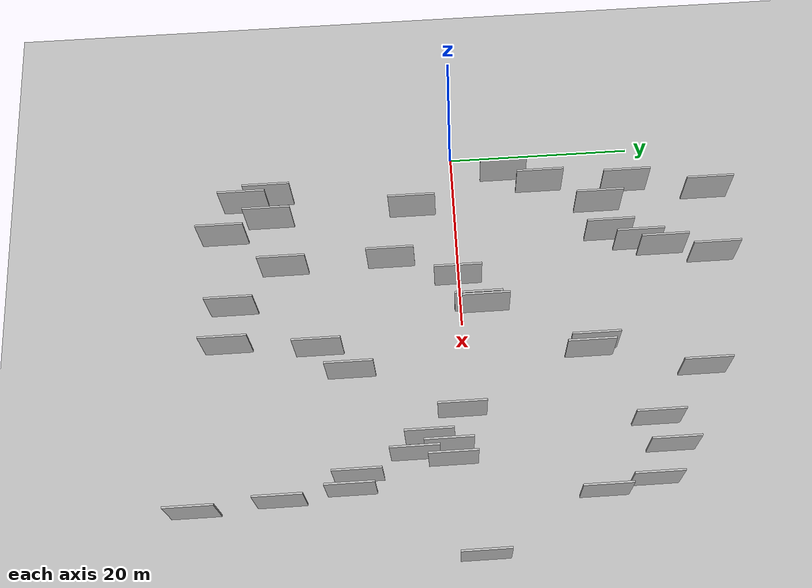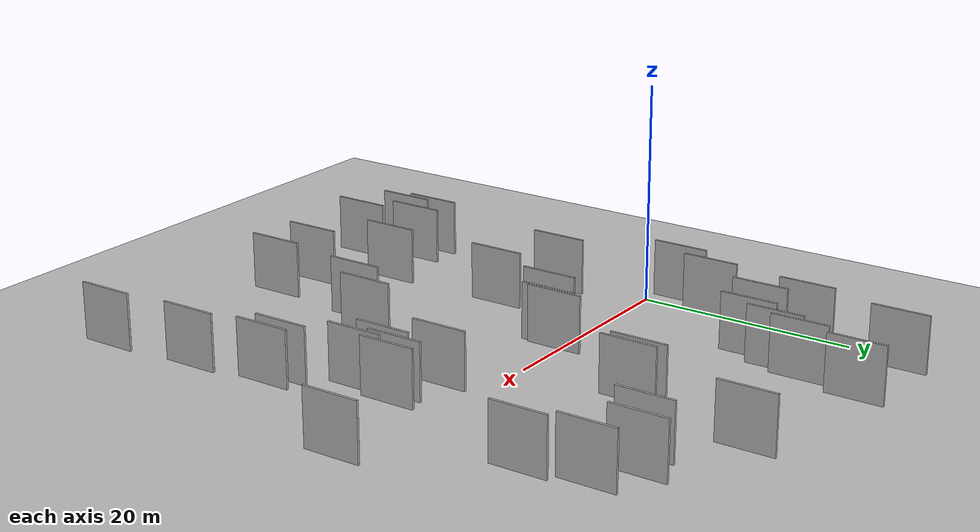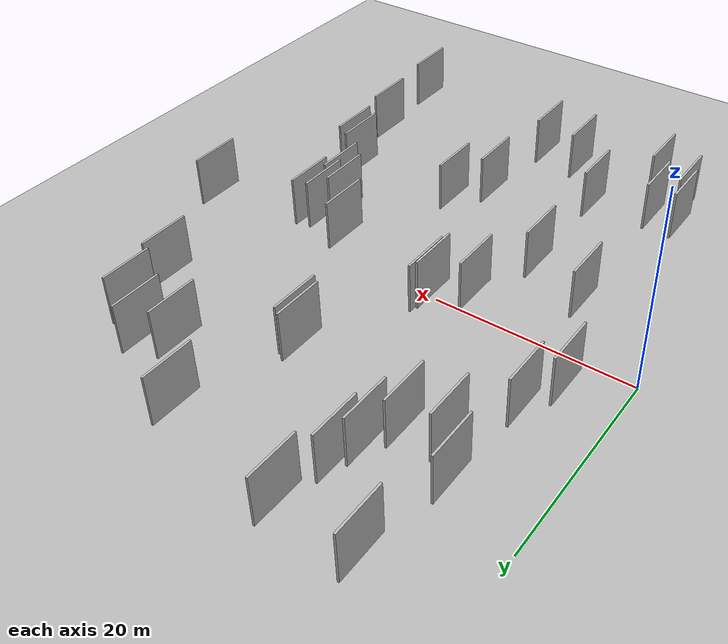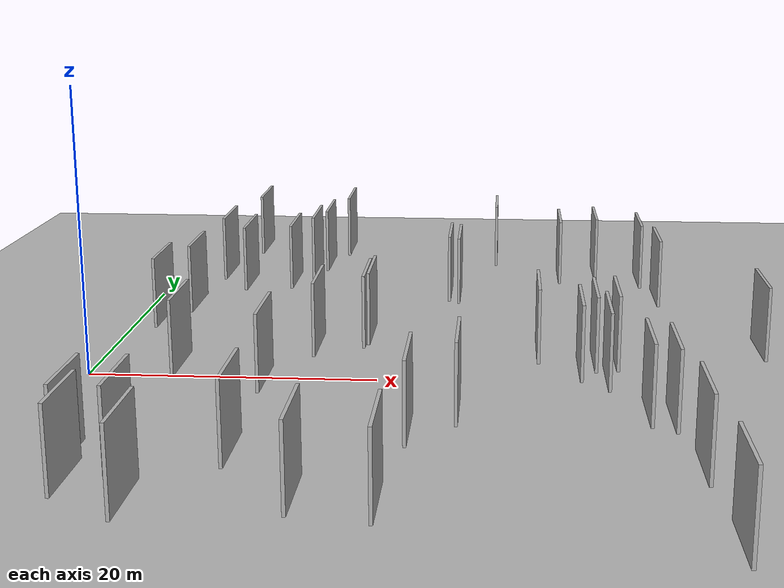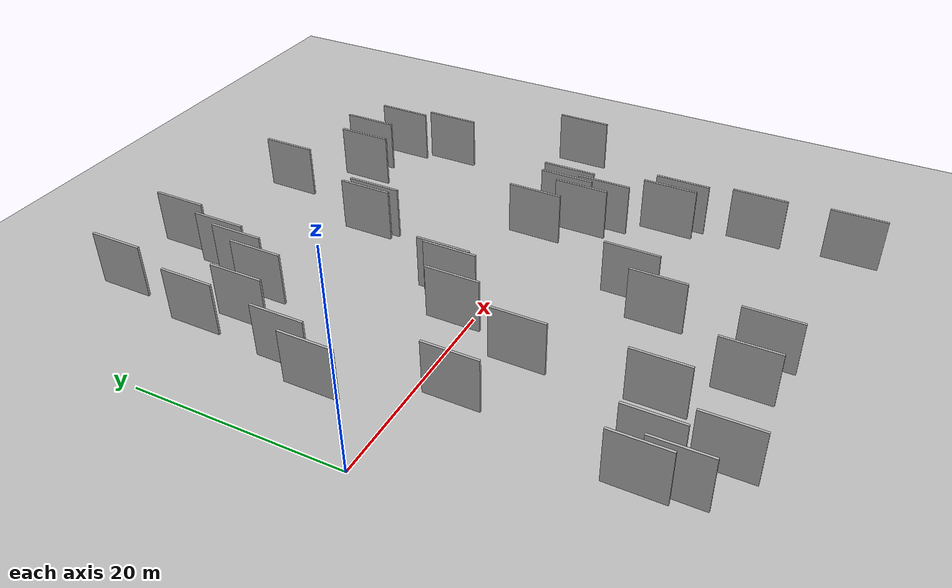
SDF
<?xml version="1.0" encoding="utf-8"?>

<sdf version="1.6">

   <world name="default">

      <gui fullscreen="0">

         <camera name="user_camera">

            <pose>-15 0 4.57585 0 0 0</pose>

            <view_controller>orbit</view_controller>

         </camera>

      </gui>

      <scene>

         <sky>

           <clouds>

             <speed>12</speed>

           </clouds>

         </sky>

         <ambient>0.4 0.4 0.4 1</ambient>

         <background>0.7 0.7 0.7 1</background>

         <shadows>1</shadows>

      </scene>

      <gravity>0 0 -9.8066</gravity>

      <magnetic_field>6e-06 2.3e-05 -4.2e-05</magnetic_field>

      <physics default="0" name="default_physics" type="ode">

         <ode>

            <solver>

               <type>quick</type>

               <iters>10</iters>

               <sor>1.0</sor>

               <use_dynamic_moi_rescaling>0</use_dynamic_moi_rescaling>

            </solver>

            <constraints>

               <cfm>0</cfm>

               <erp>0.2</erp>

               <contact_max_correcting_vel>100</contact_max_correcting_vel>

               <contact_surface_layer>0.001</contact_surface_layer>

            </constraints>

         </ode>

         <max_step_size>0.004</max_step_size>

         <real_time_factor>1</real_time_factor>

         <real_time_update_rate>250</real_time_update_rate>

      </physics>

      <light name="sun" type="directional">

         <cast_shadows>1</cast_shadows>

         <pose>0 0 10 0 0 0</pose>

         <diffuse>0.8 0.8 0.8 1</diffuse>

         <specular>0.2 0.2 0.2 1</specular>

         <attenuation>

            <range>1000</range>

            <constant>0.9</constant>

            <linear>0.01</linear>

            <quadratic>0.001</quadratic>

         </attenuation>

         <direction>-0.5 0.1 -0.9</direction>

      </light>

      <include>

         <name>ground_plane_1</name>

         <uri>model://HANNAS_ground_plane</uri>

         <pose>0 0 0  0 0 0</pose>

      </include>

      <include>

         <name>ground_plane_2</name>

         <uri>model://HANNAS_ground_plane</uri>

         <pose>100 0 0  0 0 0</pose>

      </include>

      <model name="HANNAS_wall_1">

         <static>1</static>

         <pose frame="">8.2006 -19.9528 2.5 0.000000 0.000000 1.570796</pose>

         <link name="link">

            <pose frame="">0 0 2.50 0 0 0</pose>

            <collision name="collision">

               <geometry>

                  <box>

                     <size>5.00 0.2 5.00</size>

                  </box>

               </geometry>

               <max_contacts>10</max_contacts>

               <surface>

                  <contact>

                     <ode/>

                  </contact>

                  <bounce/>

                  <friction>

                     <torsional>

                        <ode/>

                     </torsional>

                     <ode/>

                  </friction>

               </surface>

            </collision>

            <visual name="visual">

               <cast_shadows>0</cast_shadows>

               <geometry>

                  <box>

                     <size>5.00 0.2 5.00</size>

                  </box>

               </geometry>

               <material>

                  <script>

                     <uri>model://HANNAS_wall/materials/scripts</uri>

                     <uri>model://HANNAS_wall/materials/textures</uri>

                     <name>vrc/HANNAS_wall</name>

                  </script>

               </material>

            </visual>

            <self_collide>0</self_collide>

            <enable_wind>0</enable_wind>

            <kinematic>0</kinematic>

         </link>

      </model>

      <model name="HANNAS_wall_2">

         <static>1</static>

         <pose frame="">34.5145 -2.1773 2.5 0.000000 0.000000 1.570796</pose>

         <link name="link">

            <pose frame="">0 0 2.50 0 0 0</pose>

            <collision name="collision">

               <geometry>

                  <box>

                     <size>5.00 0.2 5.00</size>

                  </box>

               </geometry>

               <max_contacts>10</max_contacts>

               <surface>

                  <contact>

                     <ode/>

                  </contact>

                  <bounce/>

                  <friction>

                     <torsional>

                        <ode/>

                     </torsional>

                     <ode/>

                  </friction>

               </surface>

            </collision>

            <visual name="visual">

               <cast_shadows>0</cast_shadows>

               <geometry>

                  <box>

                     <size>5.00 0.2 5.00</size>

                  </box>

               </geometry>

               <material>

                  <script>

                     <uri>model://HANNAS_wall/materials/scripts</uri>

                     <uri>model://HANNAS_wall/materials/textures</uri>

                     <name>vrc/HANNAS_wall</name>

                  </script>

               </material>

            </visual>

            <self_collide>0</self_collide>

            <enable_wind>0</enable_wind>

            <kinematic>0</kinematic>

         </link>

      </model>

      <model name="HANNAS_wall_3">

         <static>1</static>

         <pose frame="">25.9468 -11.8065 2.5 0.000000 0.000000 1.570796</pose>

         <link name="link">

            <pose frame="">0 0 2.50 0 0 0</pose>

            <collision name="collision">

               <geometry>

                  <box>

                     <size>5.00 0.2 5.00</size>

                  </box>

               </geometry>

               <max_contacts>10</max_contacts>

               <surface>

                  <contact>

                     <ode/>

                  </contact>

                  <bounce/>

                  <friction>

                     <torsional>

                        <ode/>

                     </torsional>

                     <ode/>

                  </friction>

               </surface>

            </collision>

            <visual name="visual">

               <cast_shadows>0</cast_shadows>

               <geometry>

                  <box>

                     <size>5.00 0.2 5.00</size>

                  </box>

               </geometry>

               <material>

                  <script>

                     <uri>model://HANNAS_wall/materials/scripts</uri>

                     <uri>model://HANNAS_wall/materials/textures</uri>

                     <name>vrc/HANNAS_wall</name>

                  </script>

               </material>

            </visual>

            <self_collide>0</self_collide>

            <enable_wind>0</enable_wind>

            <kinematic>0</kinematic>

         </link>

      </model>

      <model name="HANNAS_wall_4">

         <static>1</static>

         <pose frame="">39.1354 -19.1240 2.5 0.000000 0.000000 1.570796</pose>

         <link name="link">

            <pose frame="">0 0 2.50 0 0 0</pose>

            <collision name="collision">

               <geometry>

                  <box>

                     <size>5.00 0.2 5.00</size>

                  </box>

               </geometry>

               <max_contacts>10</max_contacts>

               <surface>

                  <contact>

                     <ode/>

                  </contact>

                  <bounce/>

                  <friction>

                     <torsional>

                        <ode/>

                     </torsional>

                     <ode/>

                  </friction>

               </surface>

            </collision>

            <visual name="visual">

               <cast_shadows>0</cast_shadows>

               <geometry>

                  <box>

                     <size>5.00 0.2 5.00</size>

                  </box>

               </geometry>

               <material>

                  <script>

                     <uri>model://HANNAS_wall/materials/scripts</uri>

                     <uri>model://HANNAS_wall/materials/textures</uri>

                     <name>vrc/HANNAS_wall</name>

                  </script>

               </material>

            </visual>

            <self_collide>0</self_collide>

            <enable_wind>0</enable_wind>

            <kinematic>0</kinematic>

         </link>

      </model>

      <model name="HANNAS_wall_5">

         <static>1</static>

         <pose frame="">3.9859 5.5647 2.5 0.000000 0.000000 1.570796</pose>

         <link name="link">

            <pose frame="">0 0 2.50 0 0 0</pose>

            <collision name="collision">

               <geometry>

                  <box>

                     <size>5.00 0.2 5.00</size>

                  </box>

               </geometry>

               <max_contacts>10</max_contacts>

               <surface>

                  <contact>

                     <ode/>

                  </contact>

                  <bounce/>

                  <friction>

                     <torsional>

                        <ode/>

                     </torsional>

                     <ode/>

                  </friction>

               </surface>

            </collision>

            <visual name="visual">

               <cast_shadows>0</cast_shadows>

               <geometry>

                  <box>

                     <size>5.00 0.2 5.00</size>

                  </box>

               </geometry>

               <material>

                  <script>

                     <uri>model://HANNAS_wall/materials/scripts</uri>

                     <uri>model://HANNAS_wall/materials/textures</uri>

                     <name>vrc/HANNAS_wall</name>

                  </script>

               </material>

            </visual>

            <self_collide>0</self_collide>

            <enable_wind>0</enable_wind>

            <kinematic>0</kinematic>

         </link>

      </model>

      <model name="HANNAS_wall_6">

         <static>1</static>

         <pose frame="">30.8836 -0.6187 2.5 0.000000 0.000000 1.570796</pose>

         <link name="link">

            <pose frame="">0 0 2.50 0 0 0</pose>

            <collision name="collision">

               <geometry>

                  <box>

                     <size>5.00 0.2 5.00</size>

                  </box>

               </geometry>

               <max_contacts>10</max_contacts>

               <surface>

                  <contact>

                     <ode/>

                  </contact>

                  <bounce/>

                  <friction>

                     <torsional>

                        <ode/>

                     </torsional>

                     <ode/>

                  </friction>

               </surface>

            </collision>

            <visual name="visual">

               <cast_shadows>0</cast_shadows>

               <geometry>

                  <box>

                     <size>5.00 0.2 5.00</size>

                  </box>

               </geometry>

               <material>

                  <script>

                     <uri>model://HANNAS_wall/materials/scripts</uri>

                     <uri>model://HANNAS_wall/materials/textures</uri>

                     <name>vrc/HANNAS_wall</name>

                  </script>

               </material>

            </visual>

            <self_collide>0</self_collide>

            <enable_wind>0</enable_wind>

            <kinematic>0</kinematic>

         </link>

      </model>

      <model name="HANNAS_wall_7">

         <static>1</static>

         <pose frame="">45.7102 0.7342 2.5 0.000000 0.000000 1.570796</pose>

         <link name="link">

            <pose frame="">0 0 2.50 0 0 0</pose>

            <collision name="collision">

               <geometry>

                  <box>

                     <size>5.00 0.2 5.00</size>

                  </box>

               </geometry>

               <max_contacts>10</max_contacts>

               <surface>

                  <contact>

                     <ode/>

                  </contact>

                  <bounce/>

                  <friction>

                     <torsional>

                        <ode/>

                     </torsional>

                     <ode/>

                  </friction>

               </surface>

            </collision>

            <visual name="visual">

               <cast_shadows>0</cast_shadows>

               <geometry>

                  <box>

                     <size>5.00 0.2 5.00</size>

                  </box>

               </geometry>

               <material>

                  <script>

                     <uri>model://HANNAS_wall/materials/scripts</uri>

                     <uri>model://HANNAS_wall/materials/textures</uri>

                     <name>vrc/HANNAS_wall</name>

                  </script>

               </material>

            </visual>

            <self_collide>0</self_collide>

            <enable_wind>0</enable_wind>

            <kinematic>0</kinematic>

         </link>

      </model>

      <model name="HANNAS_wall_8">

         <static>1</static>

         <pose frame="">19.4654 2.5809 2.5 0.000000 0.000000 1.570796</pose>

         <link name="link">

            <pose frame="">0 0 2.50 0 0 0</pose>

            <collision name="collision">

               <geometry>

                  <box>

                     <size>5.00 0.2 5.00</size>

                  </box>

               </geometry>

               <max_contacts>10</max_contacts>

               <surface>

                  <contact>

                     <ode/>

                  </contact>

                  <bounce/>

                  <friction>

                     <torsional>

                        <ode/>

                     </torsional>

                     <ode/>

                  </friction>

               </surface>

            </collision>

            <visual name="visual">

               <cast_shadows>0</cast_shadows>

               <geometry>

                  <box>

                     <size>5.00 0.2 5.00</size>

                  </box>

               </geometry>

               <material>

                  <script>

                     <uri>model://HANNAS_wall/materials/scripts</uri>

                     <uri>model://HANNAS_wall/materials/textures</uri>

                     <name>vrc/HANNAS_wall</name>

                  </script>

               </material>

            </visual>

            <self_collide>0</self_collide>

            <enable_wind>0</enable_wind>

            <kinematic>0</kinematic>

         </link>

      </model>

      <model name="HANNAS_wall_9">

         <static>1</static>

         <pose frame="">6.1823 18.6429 2.5 0.000000 0.000000 1.570796</pose>

         <link name="link">

            <pose frame="">0 0 2.50 0 0 0</pose>

            <collision name="collision">

               <geometry>

                  <box>

                     <size>5.00 0.2 5.00</size>

                  </box>

               </geometry>

               <max_contacts>10</max_contacts>

               <surface>

                  <contact>

                     <ode/>

                  </contact>

                  <bounce/>

                  <friction>

                     <torsional>

                        <ode/>

                     </torsional>

                     <ode/>

                  </friction>

               </surface>

            </collision>

            <visual name="visual">

               <cast_shadows>0</cast_shadows>

               <geometry>

                  <box>

                     <size>5.00 0.2 5.00</size>

                  </box>

               </geometry>

               <material>

                  <script>

                     <uri>model://HANNAS_wall/materials/scripts</uri>

                     <uri>model://HANNAS_wall/materials/textures</uri>

                     <name>vrc/HANNAS_wall</name>

                  </script>

               </material>

            </visual>

            <self_collide>0</self_collide>

            <enable_wind>0</enable_wind>

            <kinematic>0</kinematic>

         </link>

      </model>

      <model name="HANNAS_wall_10">

         <static>1</static>

         <pose frame="">13.9180 -18.4678 2.5 0.000000 0.000000 1.570796</pose>

         <link name="link">

            <pose frame="">0 0 2.50 0 0 0</pose>

            <collision name="collision">

               <geometry>

                  <box>

                     <size>5.00 0.2 5.00</size>

                  </box>

               </geometry>

               <max_contacts>10</max_contacts>

               <surface>

                  <contact>

                     <ode/>

                  </contact>

                  <bounce/>

                  <friction>

                     <torsional>

                        <ode/>

                     </torsional>

                     <ode/>

                  </friction>

               </surface>

            </collision>

            <visual name="visual">

               <cast_shadows>0</cast_shadows>

               <geometry>

                  <box>

                     <size>5.00 0.2 5.00</size>

                  </box>

               </geometry>

               <material>

                  <script>

                     <uri>model://HANNAS_wall/materials/scripts</uri>

                     <uri>model://HANNAS_wall/materials/textures</uri>

                     <name>vrc/HANNAS_wall</name>

                  </script>

               </material>

            </visual>

            <self_collide>0</self_collide>

            <enable_wind>0</enable_wind>

            <kinematic>0</kinematic>

         </link>

      </model>

      <model name="HANNAS_wall_11">

         <static>1</static>

         <pose frame="">23.2709 -15.0259 2.5 0.000000 0.000000 1.570796</pose>

         <link name="link">

            <pose frame="">0 0 2.50 0 0 0</pose>

            <collision name="collision">

               <geometry>

                  <box>

                     <size>5.00 0.2 5.00</size>

                  </box>

               </geometry>

               <max_contacts>10</max_contacts>

               <surface>

                  <contact>

                     <ode/>

                  </contact>

                  <bounce/>

                  <friction>

                     <torsional>

                        <ode/>

                     </torsional>

                     <ode/>

                  </friction>

               </surface>

            </collision>

            <visual name="visual">

               <cast_shadows>0</cast_shadows>

               <geometry>

                  <box>

                     <size>5.00 0.2 5.00</size>

                  </box>

               </geometry>

               <material>

                  <script>

                     <uri>model://HANNAS_wall/materials/scripts</uri>

                     <uri>model://HANNAS_wall/materials/textures</uri>

                     <name>vrc/HANNAS_wall</name>

                  </script>

               </material>

            </visual>

            <self_collide>0</self_collide>

            <enable_wind>0</enable_wind>

            <kinematic>0</kinematic>

         </link>

      </model>

      <model name="HANNAS_wall_12">

         <static>1</static>

         <pose frame="">16.1060 -0.1244 2.5 0.000000 0.000000 1.570796</pose>

         <link name="link">

            <pose frame="">0 0 2.50 0 0 0</pose>

            <collision name="collision">

               <geometry>

                  <box>

                     <size>5.00 0.2 5.00</size>

                  </box>

               </geometry>

               <max_contacts>10</max_contacts>

               <surface>

                  <contact>

                     <ode/>

                  </contact>

                  <bounce/>

                  <friction>

                     <torsional>

                        <ode/>

                     </torsional>

                     <ode/>

                  </friction>

               </surface>

            </collision>

            <visual name="visual">

               <cast_shadows>0</cast_shadows>

               <geometry>

                  <box>

                     <size>5.00 0.2 5.00</size>

                  </box>

               </geometry>

               <material>

                  <script>

                     <uri>model://HANNAS_wall/materials/scripts</uri>

                     <uri>model://HANNAS_wall/materials/textures</uri>

                     <name>vrc/HANNAS_wall</name>

                  </script>

               </material>

            </visual>

            <self_collide>0</self_collide>

            <enable_wind>0</enable_wind>

            <kinematic>0</kinematic>

         </link>

      </model>

      <model name="HANNAS_wall_13">

         <static>1</static>

         <pose frame="">39.2687 18.1331 2.5 0.000000 0.000000 1.570796</pose>

         <link name="link">

            <pose frame="">0 0 2.50 0 0 0</pose>

            <collision name="collision">

               <geometry>

                  <box>

                     <size>5.00 0.2 5.00</size>

                  </box>

               </geometry>

               <max_contacts>10</max_contacts>

               <surface>

                  <contact>

                     <ode/>

                  </contact>

                  <bounce/>

                  <friction>

                     <torsional>

                        <ode/>

                     </torsional>

                     <ode/>

                  </friction>

               </surface>

            </collision>

            <visual name="visual">

               <cast_shadows>0</cast_shadows>

               <geometry>

                  <box>

                     <size>5.00 0.2 5.00</size>

                  </box>

               </geometry>

               <material>

                  <script>

                     <uri>model://HANNAS_wall/materials/scripts</uri>

                     <uri>model://HANNAS_wall/materials/textures</uri>

                     <name>vrc/HANNAS_wall</name>

                  </script>

               </material>

            </visual>

            <self_collide>0</self_collide>

            <enable_wind>0</enable_wind>

            <kinematic>0</kinematic>

         </link>

      </model>

      <model name="HANNAS_wall_14">

         <static>1</static>

         <pose frame="">5.4547 -19.9557 2.5 0.000000 0.000000 1.570796</pose>

         <link name="link">

            <pose frame="">0 0 2.50 0 0 0</pose>

            <collision name="collision">

               <geometry>

                  <box>

                     <size>5.00 0.2 5.00</size>

                  </box>

               </geometry>

               <max_contacts>10</max_contacts>

               <surface>

                  <contact>

                     <ode/>

                  </contact>

                  <bounce/>

                  <friction>

                     <torsional>

                        <ode/>

                     </torsional>

                     <ode/>

                  </friction>

               </surface>

            </collision>

            <visual name="visual">

               <cast_shadows>0</cast_shadows>

               <geometry>

                  <box>

                     <size>5.00 0.2 5.00</size>

                  </box>

               </geometry>

               <material>

                  <script>

                     <uri>model://HANNAS_wall/materials/scripts</uri>

                     <uri>model://HANNAS_wall/materials/textures</uri>

                     <name>vrc/HANNAS_wall</name>

                  </script>

               </material>

            </visual>

            <self_collide>0</self_collide>

            <enable_wind>0</enable_wind>

            <kinematic>0</kinematic>

         </link>

      </model>

      <model name="HANNAS_wall_15">

         <static>1</static>

         <pose frame="">14.0454 21.8144 2.5 0.000000 0.000000 1.570796</pose>

         <link name="link">

            <pose frame="">0 0 2.50 0 0 0</pose>

            <collision name="collision">

               <geometry>

                  <box>

                     <size>5.00 0.2 5.00</size>

                  </box>

               </geometry>

               <max_contacts>10</max_contacts>

               <surface>

                  <contact>

                     <ode/>

                  </contact>

                  <bounce/>

                  <friction>

                     <torsional>

                        <ode/>

                     </torsional>

                     <ode/>

                  </friction>

               </surface>

            </collision>

            <visual name="visual">

               <cast_shadows>0</cast_shadows>

               <geometry>

                  <box>

                     <size>5.00 0.2 5.00</size>

                  </box>

               </geometry>

               <material>

                  <script>

                     <uri>model://HANNAS_wall/materials/scripts</uri>

                     <uri>model://HANNAS_wall/materials/textures</uri>

                     <name>vrc/HANNAS_wall</name>

                  </script>

               </material>

            </visual>

            <self_collide>0</self_collide>

            <enable_wind>0</enable_wind>

            <kinematic>0</kinematic>

         </link>

      </model>

      <model name="HANNAS_wall_16">

         <static>1</static>

         <pose frame="">13.6824 -7.1230 2.5 0.000000 0.000000 1.570796</pose>

         <link name="link">

            <pose frame="">0 0 2.50 0 0 0</pose>

            <collision name="collision">

               <geometry>

                  <box>

                     <size>5.00 0.2 5.00</size>

                  </box>

               </geometry>

               <max_contacts>10</max_contacts>

               <surface>

                  <contact>

                     <ode/>

                  </contact>

                  <bounce/>

                  <friction>

                     <torsional>

                        <ode/>

                     </torsional>

                     <ode/>

                  </friction>

               </surface>

            </collision>

            <visual name="visual">

               <cast_shadows>0</cast_shadows>

               <geometry>

                  <box>

                     <size>5.00 0.2 5.00</size>

                  </box>

               </geometry>

               <material>

                  <script>

                     <uri>model://HANNAS_wall/materials/scripts</uri>

                     <uri>model://HANNAS_wall/materials/textures</uri>

                     <name>vrc/HANNAS_wall</name>

                  </script>

               </material>

            </visual>

            <self_collide>0</self_collide>

            <enable_wind>0</enable_wind>

            <kinematic>0</kinematic>

         </link>

      </model>

      <model name="HANNAS_wall_17">

         <static>1</static>

         <pose frame="">8.4701 15.5159 2.5 0.000000 0.000000 1.570796</pose>

         <link name="link">

            <pose frame="">0 0 2.50 0 0 0</pose>

            <collision name="collision">

               <geometry>

                  <box>

                     <size>5.00 0.2 5.00</size>

                  </box>

               </geometry>

               <max_contacts>10</max_contacts>

               <surface>

                  <contact>

                     <ode/>

                  </contact>

                  <bounce/>

                  <friction>

                     <torsional>

                        <ode/>

                     </torsional>

                     <ode/>

                  </friction>

               </surface>

            </collision>

            <visual name="visual">

               <cast_shadows>0</cast_shadows>

               <geometry>

                  <box>

                     <size>5.00 0.2 5.00</size>

                  </box>

               </geometry>

               <material>

                  <script>

                     <uri>model://HANNAS_wall/materials/scripts</uri>

                     <uri>model://HANNAS_wall/materials/textures</uri>

                     <name>vrc/HANNAS_wall</name>

                  </script>

               </material>

            </visual>

            <self_collide>0</self_collide>

            <enable_wind>0</enable_wind>

            <kinematic>0</kinematic>

         </link>

      </model>

      <model name="HANNAS_wall_18">

         <static>1</static>

         <pose frame="">11.9503 16.2936 2.5 0.000000 0.000000 1.570796</pose>

         <link name="link">

            <pose frame="">0 0 2.50 0 0 0</pose>

            <collision name="collision">

               <geometry>

                  <box>

                     <size>5.00 0.2 5.00</size>

                  </box>

               </geometry>

               <max_contacts>10</max_contacts>

               <surface>

                  <contact>

                     <ode/>

                  </contact>

                  <bounce/>

                  <friction>

                     <torsional>

                        <ode/>

                     </torsional>

                     <ode/>

                  </friction>

               </surface>

            </collision>

            <visual name="visual">

               <cast_shadows>0</cast_shadows>

               <geometry>

                  <box>

                     <size>5.00 0.2 5.00</size>

                  </box>

               </geometry>

               <material>

                  <script>

                     <uri>model://HANNAS_wall/materials/scripts</uri>

                     <uri>model://HANNAS_wall/materials/textures</uri>

                     <name>vrc/HANNAS_wall</name>

                  </script>

               </material>

            </visual>

            <self_collide>0</self_collide>

            <enable_wind>0</enable_wind>

            <kinematic>0</kinematic>

         </link>

      </model>

      <model name="HANNAS_wall_19">

         <static>1</static>

         <pose frame="">39.6693 -27.7155 2.5 0.000000 0.000000 1.570796</pose>

         <link name="link">

            <pose frame="">0 0 2.50 0 0 0</pose>

            <collision name="collision">

               <geometry>

                  <box>

                     <size>5.00 0.2 5.00</size>

                  </box>

               </geometry>

               <max_contacts>10</max_contacts>

               <surface>

                  <contact>

                     <ode/>

                  </contact>

                  <bounce/>

                  <friction>

                     <torsional>

                        <ode/>

                     </torsional>

                     <ode/>

                  </friction>

               </surface>

            </collision>

            <visual name="visual">

               <cast_shadows>0</cast_shadows>

               <geometry>

                  <box>

                     <size>5.00 0.2 5.00</size>

                  </box>

               </geometry>

               <material>

                  <script>

                     <uri>model://HANNAS_wall/materials/scripts</uri>

                     <uri>model://HANNAS_wall/materials/textures</uri>

                     <name>vrc/HANNAS_wall</name>

                  </script>

               </material>

            </visual>

            <self_collide>0</self_collide>

            <enable_wind>0</enable_wind>

            <kinematic>0</kinematic>

         </link>

      </model>

      <model name="HANNAS_wall_20">

         <static>1</static>

         <pose frame="">38.4005 -12.1236 2.5 0.000000 0.000000 1.570796</pose>

         <link name="link">

            <pose frame="">0 0 2.50 0 0 0</pose>

            <collision name="collision">

               <geometry>

                  <box>

                     <size>5.00 0.2 5.00</size>

                  </box>

               </geometry>

               <max_contacts>10</max_contacts>

               <surface>

                  <contact>

                     <ode/>

                  </contact>

                  <bounce/>

                  <friction>

                     <torsional>

                        <ode/>

                     </torsional>

                     <ode/>

                  </friction>

               </surface>

            </collision>

            <visual name="visual">

               <cast_shadows>0</cast_shadows>

               <geometry>

                  <box>

                     <size>5.00 0.2 5.00</size>

                  </box>

               </geometry>

               <material>

                  <script>

                     <uri>model://HANNAS_wall/materials/scripts</uri>

                     <uri>model://HANNAS_wall/materials/textures</uri>

                     <name>vrc/HANNAS_wall</name>

                  </script>

               </material>

            </visual>

            <self_collide>0</self_collide>

            <enable_wind>0</enable_wind>

            <kinematic>0</kinematic>

         </link>

      </model>

      <model name="HANNAS_wall_21">

         <static>1</static>

         <pose frame="">7.7289 -4.5549 2.5 0.000000 0.000000 1.570796</pose>

         <link name="link">

            <pose frame="">0 0 2.50 0 0 0</pose>

            <collision name="collision">

               <geometry>

                  <box>

                     <size>5.00 0.2 5.00</size>

                  </box>

               </geometry>

               <max_contacts>10</max_contacts>

               <surface>

                  <contact>

                     <ode/>

                  </contact>

                  <bounce/>

                  <friction>

                     <torsional>

                        <ode/>

                     </torsional>

                     <ode/>

                  </friction>

               </surface>

            </collision>

            <visual name="visual">

               <cast_shadows>0</cast_shadows>

               <geometry>

                  <box>

                     <size>5.00 0.2 5.00</size>

                  </box>

               </geometry>

               <material>

                  <script>

                     <uri>model://HANNAS_wall/materials/scripts</uri>

                     <uri>model://HANNAS_wall/materials/textures</uri>

                     <name>vrc/HANNAS_wall</name>

                  </script>

               </material>

            </visual>

            <self_collide>0</self_collide>

            <enable_wind>0</enable_wind>

            <kinematic>0</kinematic>

         </link>

      </model>

      <model name="HANNAS_wall_22">

         <static>1</static>

         <pose frame="">9.8994 -24.8902 2.5 0.000000 0.000000 1.570796</pose>

         <link name="link">

            <pose frame="">0 0 2.50 0 0 0</pose>

            <collision name="collision">

               <geometry>

                  <box>

                     <size>5.00 0.2 5.00</size>

                  </box>

               </geometry>

               <max_contacts>10</max_contacts>

               <surface>

                  <contact>

                     <ode/>

                  </contact>

                  <bounce/>

                  <friction>

                     <torsional>

                        <ode/>

                     </torsional>

                     <ode/>

                  </friction>

               </surface>

            </collision>

            <visual name="visual">

               <cast_shadows>0</cast_shadows>

               <geometry>

                  <box>

                     <size>5.00 0.2 5.00</size>

                  </box>

               </geometry>

               <material>

                  <script>

                     <uri>model://HANNAS_wall/materials/scripts</uri>

                     <uri>model://HANNAS_wall/materials/textures</uri>

                     <name>vrc/HANNAS_wall</name>

                  </script>

               </material>

            </visual>

            <self_collide>0</self_collide>

            <enable_wind>0</enable_wind>

            <kinematic>0</kinematic>

         </link>

      </model>

      <model name="HANNAS_wall_23">

         <static>1</static>

         <pose frame="">35.9133 20.2074 2.5 0.000000 0.000000 1.570796</pose>

         <link name="link">

            <pose frame="">0 0 2.50 0 0 0</pose>

            <collision name="collision">

               <geometry>

                  <box>

                     <size>5.00 0.2 5.00</size>

                  </box>

               </geometry>

               <max_contacts>10</max_contacts>

               <surface>

                  <contact>

                     <ode/>

                  </contact>

                  <bounce/>

                  <friction>

                     <torsional>

                        <ode/>

                     </torsional>

                     <ode/>

                  </friction>

               </surface>

            </collision>

            <visual name="visual">

               <cast_shadows>0</cast_shadows>

               <geometry>

                  <box>

                     <size>5.00 0.2 5.00</size>

                  </box>

               </geometry>

               <material>

                  <script>

                     <uri>model://HANNAS_wall/materials/scripts</uri>

                     <uri>model://HANNAS_wall/materials/textures</uri>

                     <name>vrc/HANNAS_wall</name>

                  </script>

               </material>

            </visual>

            <self_collide>0</self_collide>

            <enable_wind>0</enable_wind>

            <kinematic>0</kinematic>

         </link>

      </model>

      <model name="HANNAS_wall_24">

         <static>1</static>

         <pose frame="">37.0571 -11.3581 2.5 0.000000 0.000000 1.570796</pose>

         <link name="link">

            <pose frame="">0 0 2.50 0 0 0</pose>

            <collision name="collision">

               <geometry>

                  <box>

                     <size>5.00 0.2 5.00</size>

                  </box>

               </geometry>

               <max_contacts>10</max_contacts>

               <surface>

                  <contact>

                     <ode/>

                  </contact>

                  <bounce/>

                  <friction>

                     <torsional>

                        <ode/>

                     </torsional>

                     <ode/>

                  </friction>

               </surface>

            </collision>

            <visual name="visual">

               <cast_shadows>0</cast_shadows>

               <geometry>

                  <box>

                     <size>5.00 0.2 5.00</size>

                  </box>

               </geometry>

               <material>

                  <script>

                     <uri>model://HANNAS_wall/materials/scripts</uri>

                     <uri>model://HANNAS_wall/materials/textures</uri>

                     <name>vrc/HANNAS_wall</name>

                  </script>

               </material>

            </visual>

            <self_collide>0</self_collide>

            <enable_wind>0</enable_wind>

            <kinematic>0</kinematic>

         </link>

      </model>

      <model name="HANNAS_wall_25">

         <static>1</static>

         <pose frame="">40.1353 13.0059 2.5 0.000000 0.000000 1.570796</pose>

         <link name="link">

            <pose frame="">0 0 2.50 0 0 0</pose>

            <collision name="collision">

               <geometry>

                  <box>

                     <size>5.00 0.2 5.00</size>

                  </box>

               </geometry>

               <max_contacts>10</max_contacts>

               <surface>

                  <contact>

                     <ode/>

                  </contact>

                  <bounce/>

                  <friction>

                     <torsional>

                        <ode/>

                     </torsional>

                     <ode/>

                  </friction>

               </surface>

            </collision>

            <visual name="visual">

               <cast_shadows>0</cast_shadows>

               <geometry>

                  <box>

                     <size>5.00 0.2 5.00</size>

                  </box>

               </geometry>

               <material>

                  <script>

                     <uri>model://HANNAS_wall/materials/scripts</uri>

                     <uri>model://HANNAS_wall/materials/textures</uri>

                     <name>vrc/HANNAS_wall</name>

                  </script>

               </material>

            </visual>

            <self_collide>0</self_collide>

            <enable_wind>0</enable_wind>

            <kinematic>0</kinematic>

         </link>

      </model>

      <model name="HANNAS_wall_26">

         <static>1</static>

         <pose frame="">5.6180 9.3715 2.5 0.000000 0.000000 1.570796</pose>

         <link name="link">

            <pose frame="">0 0 2.50 0 0 0</pose>

            <collision name="collision">

               <geometry>

                  <box>

                     <size>5.00 0.2 5.00</size>

                  </box>

               </geometry>

               <max_contacts>10</max_contacts>

               <surface>

                  <contact>

                     <ode/>

                  </contact>

                  <bounce/>

                  <friction>

                     <torsional>

                        <ode/>

                     </torsional>

                     <ode/>

                  </friction>

               </surface>

            </collision>

            <visual name="visual">

               <cast_shadows>0</cast_shadows>

               <geometry>

                  <box>

                     <size>5.00 0.2 5.00</size>

                  </box>

               </geometry>

               <material>

                  <script>

                     <uri>model://HANNAS_wall/materials/scripts</uri>

                     <uri>model://HANNAS_wall/materials/textures</uri>

                     <name>vrc/HANNAS_wall</name>

                  </script>

               </material>

            </visual>

            <self_collide>0</self_collide>

            <enable_wind>0</enable_wind>

            <kinematic>0</kinematic>

         </link>

      </model>

      <model name="HANNAS_wall_27">

         <static>1</static>

         <pose frame="">6.1217 -22.5679 2.5 0.000000 0.000000 1.570796</pose>

         <link name="link">

            <pose frame="">0 0 2.50 0 0 0</pose>

            <collision name="collision">

               <geometry>

                  <box>

                     <size>5.00 0.2 5.00</size>

                  </box>

               </geometry>

               <max_contacts>10</max_contacts>

               <surface>

                  <contact>

                     <ode/>

                  </contact>

                  <bounce/>

                  <friction>

                     <torsional>

                        <ode/>

                     </torsional>

                     <ode/>

                  </friction>

               </surface>

            </collision>

            <visual name="visual">

               <cast_shadows>0</cast_shadows>

               <geometry>

                  <box>

                     <size>5.00 0.2 5.00</size>

                  </box>

               </geometry>

               <material>

                  <script>

                     <uri>model://HANNAS_wall/materials/scripts</uri>

                     <uri>model://HANNAS_wall/materials/textures</uri>

                     <name>vrc/HANNAS_wall</name>

                  </script>

               </material>

            </visual>

            <self_collide>0</self_collide>

            <enable_wind>0</enable_wind>

            <kinematic>0</kinematic>

         </link>

      </model>

      <model name="HANNAS_wall_28">

         <static>1</static>

         <pose frame="">25.1986 12.9842 2.5 0.000000 0.000000 1.570796</pose>

         <link name="link">

            <pose frame="">0 0 2.50 0 0 0</pose>

            <collision name="collision">

               <geometry>

                  <box>

                     <size>5.00 0.2 5.00</size>

                  </box>

               </geometry>

               <max_contacts>10</max_contacts>

               <surface>

                  <contact>

                     <ode/>

                  </contact>

                  <bounce/>

                  <friction>

                     <torsional>

                        <ode/>

                     </torsional>

                     <ode/>

                  </friction>

               </surface>

            </collision>

            <visual name="visual">

               <cast_shadows>0</cast_shadows>

               <geometry>

                  <box>

                     <size>5.00 0.2 5.00</size>

                  </box>

               </geometry>

               <material>

                  <script>

                     <uri>model://HANNAS_wall/materials/scripts</uri>

                     <uri>model://HANNAS_wall/materials/textures</uri>

                     <name>vrc/HANNAS_wall</name>

                  </script>

               </material>

            </visual>

            <self_collide>0</self_collide>

            <enable_wind>0</enable_wind>

            <kinematic>0</kinematic>

         </link>

      </model>

      <model name="HANNAS_wall_29">

         <static>1</static>

         <pose frame="">15.2211 27.1526 2.5 0.000000 0.000000 1.570796</pose>

         <link name="link">

            <pose frame="">0 0 2.50 0 0 0</pose>

            <collision name="collision">

               <geometry>

                  <box>

                     <size>5.00 0.2 5.00</size>

                  </box>

               </geometry>

               <max_contacts>10</max_contacts>

               <surface>

                  <contact>

                     <ode/>

                  </contact>

                  <bounce/>

                  <friction>

                     <torsional>

                        <ode/>

                     </torsional>

                     <ode/>

                  </friction>

               </surface>

            </collision>

            <visual name="visual">

               <cast_shadows>0</cast_shadows>

               <geometry>

                  <box>

                     <size>5.00 0.2 5.00</size>

                  </box>

               </geometry>

               <material>

                  <script>

                     <uri>model://HANNAS_wall/materials/scripts</uri>

                     <uri>model://HANNAS_wall/materials/textures</uri>

                     <name>vrc/HANNAS_wall</name>

                  </script>

               </material>

            </visual>

            <self_collide>0</self_collide>

            <enable_wind>0</enable_wind>

            <kinematic>0</kinematic>

         </link>

      </model>

      <model name="HANNAS_wall_30">

         <static>1</static>

         <pose frame="">27.9162 24.4913 2.5 0.000000 0.000000 1.570796</pose>

         <link name="link">

            <pose frame="">0 0 2.50 0 0 0</pose>

            <collision name="collision">

               <geometry>

                  <box>

                     <size>5.00 0.2 5.00</size>

                  </box>

               </geometry>

               <max_contacts>10</max_contacts>

               <surface>

                  <contact>

                     <ode/>

                  </contact>

                  <bounce/>

                  <friction>

                     <torsional>

                        <ode/>

                     </torsional>

                     <ode/>

                  </friction>

               </surface>

            </collision>

            <visual name="visual">

               <cast_shadows>0</cast_shadows>

               <geometry>

                  <box>

                     <size>5.00 0.2 5.00</size>

                  </box>

               </geometry>

               <material>

                  <script>

                     <uri>model://HANNAS_wall/materials/scripts</uri>

                     <uri>model://HANNAS_wall/materials/textures</uri>

                     <name>vrc/HANNAS_wall</name>

                  </script>

               </material>

            </visual>

            <self_collide>0</self_collide>

            <enable_wind>0</enable_wind>

            <kinematic>0</kinematic>

         </link>

      </model>

      <model name="HANNAS_wall_31">

         <static>1</static>

         <pose frame="">13.2609 19.3140 2.5 0.000000 0.000000 1.570796</pose>

         <link name="link">

            <pose frame="">0 0 2.50 0 0 0</pose>

            <collision name="collision">

               <geometry>

                  <box>

                     <size>5.00 0.2 5.00</size>

                  </box>

               </geometry>

               <max_contacts>10</max_contacts>

               <surface>

                  <contact>

                     <ode/>

                  </contact>

                  <bounce/>

                  <friction>

                     <torsional>

                        <ode/>

                     </torsional>

                     <ode/>

                  </friction>

               </surface>

            </collision>

            <visual name="visual">

               <cast_shadows>0</cast_shadows>

               <geometry>

                  <box>

                     <size>5.00 0.2 5.00</size>

                  </box>

               </geometry>

               <material>

                  <script>

                     <uri>model://HANNAS_wall/materials/scripts</uri>

                     <uri>model://HANNAS_wall/materials/textures</uri>

                     <name>vrc/HANNAS_wall</name>

                  </script>

               </material>

            </visual>

            <self_collide>0</self_collide>

            <enable_wind>0</enable_wind>

            <kinematic>0</kinematic>

         </link>

      </model>

      <model name="HANNAS_wall_32">

         <static>1</static>

         <pose frame="">22.4281 -24.5049 2.5 0.000000 0.000000 1.570796</pose>

         <link name="link">

            <pose frame="">0 0 2.50 0 0 0</pose>

            <collision name="collision">

               <geometry>

                  <box>

                     <size>5.00 0.2 5.00</size>

                  </box>

               </geometry>

               <max_contacts>10</max_contacts>

               <surface>

                  <contact>

                     <ode/>

                  </contact>

                  <bounce/>

                  <friction>

                     <torsional>

                        <ode/>

                     </torsional>

                     <ode/>

                  </friction>

               </surface>

            </collision>

            <visual name="visual">

               <cast_shadows>0</cast_shadows>

               <geometry>

                  <box>

                     <size>5.00 0.2 5.00</size>

                  </box>

               </geometry>

               <material>

                  <script>

                     <uri>model://HANNAS_wall/materials/scripts</uri>

                     <uri>model://HANNAS_wall/materials/textures</uri>

                     <name>vrc/HANNAS_wall</name>

                  </script>

               </material>

            </visual>

            <self_collide>0</self_collide>

            <enable_wind>0</enable_wind>

            <kinematic>0</kinematic>

         </link>

      </model>

      <model name="HANNAS_wall_33">

         <static>1</static>

         <pose frame="">7.6150 27.4148 2.5 0.000000 0.000000 1.570796</pose>

         <link name="link">

            <pose frame="">0 0 2.50 0 0 0</pose>

            <collision name="collision">

               <geometry>

                  <box>

                     <size>5.00 0.2 5.00</size>

                  </box>

               </geometry>

               <max_contacts>10</max_contacts>

               <surface>

                  <contact>

                     <ode/>

                  </contact>

                  <bounce/>

                  <friction>

                     <torsional>

                        <ode/>

                     </torsional>

                     <ode/>

                  </friction>

               </surface>

            </collision>

            <visual name="visual">

               <cast_shadows>0</cast_shadows>

               <geometry>

                  <box>

                     <size>5.00 0.2 5.00</size>

                  </box>

               </geometry>

               <material>

                  <script>

                     <uri>model://HANNAS_wall/materials/scripts</uri>

                     <uri>model://HANNAS_wall/materials/textures</uri>

                     <name>vrc/HANNAS_wall</name>

                  </script>

               </material>

            </visual>

            <self_collide>0</self_collide>

            <enable_wind>0</enable_wind>

            <kinematic>0</kinematic>

         </link>

      </model>

      <model name="HANNAS_wall_34">

         <static>1</static>

         <pose frame="">24.4704 13.4908 2.5 0.000000 0.000000 1.570796</pose>

         <link name="link">

            <pose frame="">0 0 2.50 0 0 0</pose>

            <collision name="collision">

               <geometry>

                  <box>

                     <size>5.00 0.2 5.00</size>

                  </box>

               </geometry>

               <max_contacts>10</max_contacts>

               <surface>

                  <contact>

                     <ode/>

                  </contact>

                  <bounce/>

                  <friction>

                     <torsional>

                        <ode/>

                     </torsional>

                     <ode/>

                  </friction>

               </surface>

            </collision>

            <visual name="visual">

               <cast_shadows>0</cast_shadows>

               <geometry>

                  <box>

                     <size>5.00 0.2 5.00</size>

                  </box>

               </geometry>

               <material>

                  <script>

                     <uri>model://HANNAS_wall/materials/scripts</uri>

                     <uri>model://HANNAS_wall/materials/textures</uri>

                     <name>vrc/HANNAS_wall</name>

                  </script>

               </material>

            </visual>

            <self_collide>0</self_collide>

            <enable_wind>0</enable_wind>

            <kinematic>0</kinematic>

         </link>

      </model>

      <model name="HANNAS_wall_35">

         <static>1</static>

         <pose frame="">18.1667 -23.9061 2.5 0.000000 0.000000 1.570796</pose>

         <link name="link">

            <pose frame="">0 0 2.50 0 0 0</pose>

            <collision name="collision">

               <geometry>

                  <box>

                     <size>5.00 0.2 5.00</size>

                  </box>

               </geometry>

               <max_contacts>10</max_contacts>

               <surface>

                  <contact>

                     <ode/>

                  </contact>

                  <bounce/>

                  <friction>

                     <torsional>

                        <ode/>

                     </torsional>

                     <ode/>

                  </friction>

               </surface>

            </collision>

            <visual name="visual">

               <cast_shadows>0</cast_shadows>

               <geometry>

                  <box>

                     <size>5.00 0.2 5.00</size>

                  </box>

               </geometry>

               <material>

                  <script>

                     <uri>model://HANNAS_wall/materials/scripts</uri>

                     <uri>model://HANNAS_wall/materials/textures</uri>

                     <name>vrc/HANNAS_wall</name>

                  </script>

               </material>

            </visual>

            <self_collide>0</self_collide>

            <enable_wind>0</enable_wind>

            <kinematic>0</kinematic>

         </link>

      </model>

      <model name="HANNAS_wall_36">

         <static>1</static>

         <pose frame="">33.4924 -4.0670 2.5 0.000000 0.000000 1.570796</pose>

         <link name="link">

            <pose frame="">0 0 2.50 0 0 0</pose>

            <collision name="collision">

               <geometry>

                  <box>

                     <size>5.00 0.2 5.00</size>

                  </box>

               </geometry>

               <max_contacts>10</max_contacts>

               <surface>

                  <contact>

                     <ode/>

                  </contact>

                  <bounce/>

                  <friction>

                     <torsional>

                        <ode/>

                     </torsional>

                     <ode/>

                  </friction>

               </surface>

            </collision>

            <visual name="visual">

               <cast_shadows>0</cast_shadows>

               <geometry>

                  <box>

                     <size>5.00 0.2 5.00</size>

                  </box>

               </geometry>

               <material>

                  <script>

                     <uri>model://HANNAS_wall/materials/scripts</uri>

                     <uri>model://HANNAS_wall/materials/textures</uri>

                     <name>vrc/HANNAS_wall</name>

                  </script>

               </material>

            </visual>

            <self_collide>0</self_collide>

            <enable_wind>0</enable_wind>

            <kinematic>0</kinematic>

         </link>

      </model>

      <model name="HANNAS_wall_37">

         <static>1</static>

         <pose frame="">33.0207 19.0592 2.5 0.000000 0.000000 1.570796</pose>

         <link name="link">

            <pose frame="">0 0 2.50 0 0 0</pose>

            <collision name="collision">

               <geometry>

                  <box>

                     <size>5.00 0.2 5.00</size>

                  </box>

               </geometry>

               <max_contacts>10</max_contacts>

               <surface>

                  <contact>

                     <ode/>

                  </contact>

                  <bounce/>

                  <friction>

                     <torsional>

                        <ode/>

                     </torsional>

                     <ode/>

                  </friction>

               </surface>

            </collision>

            <visual name="visual">

               <cast_shadows>0</cast_shadows>

               <geometry>

                  <box>

                     <size>5.00 0.2 5.00</size>

                  </box>

               </geometry>

               <material>

                  <script>

                     <uri>model://HANNAS_wall/materials/scripts</uri>

                     <uri>model://HANNAS_wall/materials/textures</uri>

                     <name>vrc/HANNAS_wall</name>

                  </script>

               </material>

            </visual>

            <self_collide>0</self_collide>

            <enable_wind>0</enable_wind>

            <kinematic>0</kinematic>

         </link>

      </model>

      <model name="HANNAS_wall_38">

         <static>1</static>

         <pose frame="">19.2126 1.8384 2.5 0.000000 0.000000 1.570796</pose>

         <link name="link">

            <pose frame="">0 0 2.50 0 0 0</pose>

            <collision name="collision">

               <geometry>

                  <box>

                     <size>5.00 0.2 5.00</size>

                  </box>

               </geometry>

               <max_contacts>10</max_contacts>

               <surface>

                  <contact>

                     <ode/>

                  </contact>

                  <bounce/>

                  <friction>

                     <torsional>

                        <ode/>

                     </torsional>

                     <ode/>

                  </friction>

               </surface>

            </collision>

            <visual name="visual">

               <cast_shadows>0</cast_shadows>

               <geometry>

                  <box>

                     <size>5.00 0.2 5.00</size>

                  </box>

               </geometry>

               <material>

                  <script>

                     <uri>model://HANNAS_wall/materials/scripts</uri>

                     <uri>model://HANNAS_wall/materials/textures</uri>

                     <name>vrc/HANNAS_wall</name>

                  </script>

               </material>

            </visual>

            <self_collide>0</self_collide>

            <enable_wind>0</enable_wind>

            <kinematic>0</kinematic>

         </link>

      </model>

      <model name="HANNAS_wall_39">

         <static>1</static>

         <pose frame="">35.1174 -5.6189 2.5 0.000000 0.000000 1.570796</pose>

         <link name="link">

            <pose frame="">0 0 2.50 0 0 0</pose>

            <collision name="collision">

               <geometry>

                  <box>

                     <size>5.00 0.2 5.00</size>

                  </box>

               </geometry>

               <max_contacts>10</max_contacts>

               <surface>

                  <contact>

                     <ode/>

                  </contact>

                  <bounce/>

                  <friction>

                     <torsional>

                        <ode/>

                     </torsional>

                     <ode/>

                  </friction>

               </surface>

            </collision>

            <visual name="visual">

               <cast_shadows>0</cast_shadows>

               <geometry>

                  <box>

                     <size>5.00 0.2 5.00</size>

                  </box>

               </geometry>

               <material>

                  <script>

                     <uri>model://HANNAS_wall/materials/scripts</uri>

                     <uri>model://HANNAS_wall/materials/textures</uri>

                     <name>vrc/HANNAS_wall</name>

                  </script>

               </material>

            </visual>

            <self_collide>0</self_collide>

            <enable_wind>0</enable_wind>

            <kinematic>0</kinematic>

         </link>

      </model>

      <model name="HANNAS_wall_40">

         <static>1</static>

         <pose frame="">35.9265 -1.8322 2.5 0.000000 0.000000 1.570796</pose>

         <link name="link">

            <pose frame="">0 0 2.50 0 0 0</pose>

            <collision name="collision">

               <geometry>

                  <box>

                     <size>5.00 0.2 5.00</size>

                  </box>

               </geometry>

               <max_contacts>10</max_contacts>

               <surface>

                  <contact>

                     <ode/>

                  </contact>

                  <bounce/>

                  <friction>

                     <torsional>

                        <ode/>

                     </torsional>

                     <ode/>

                  </friction>

               </surface>

            </collision>

            <visual name="visual">

               <cast_shadows>0</cast_shadows>

               <geometry>

                  <box>

                     <size>5.00 0.2 5.00</size>

                  </box>

               </geometry>

               <material>

                  <script>

                     <uri>model://HANNAS_wall/materials/scripts</uri>

                     <uri>model://HANNAS_wall/materials/textures</uri>

                     <name>vrc/HANNAS_wall</name>

                  </script>

               </material>

            </visual>

            <self_collide>0</self_collide>

            <enable_wind>0</enable_wind>

            <kinematic>0</kinematic>

         </link>

      </model>

   </world>

</sdf>
